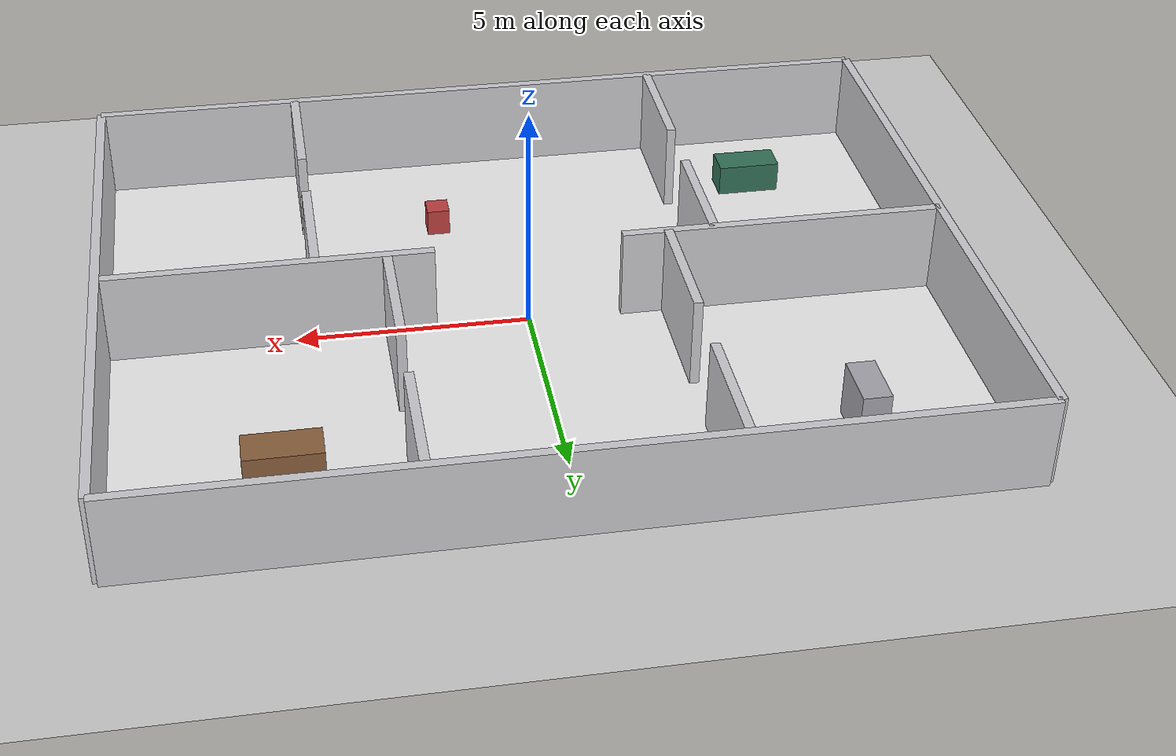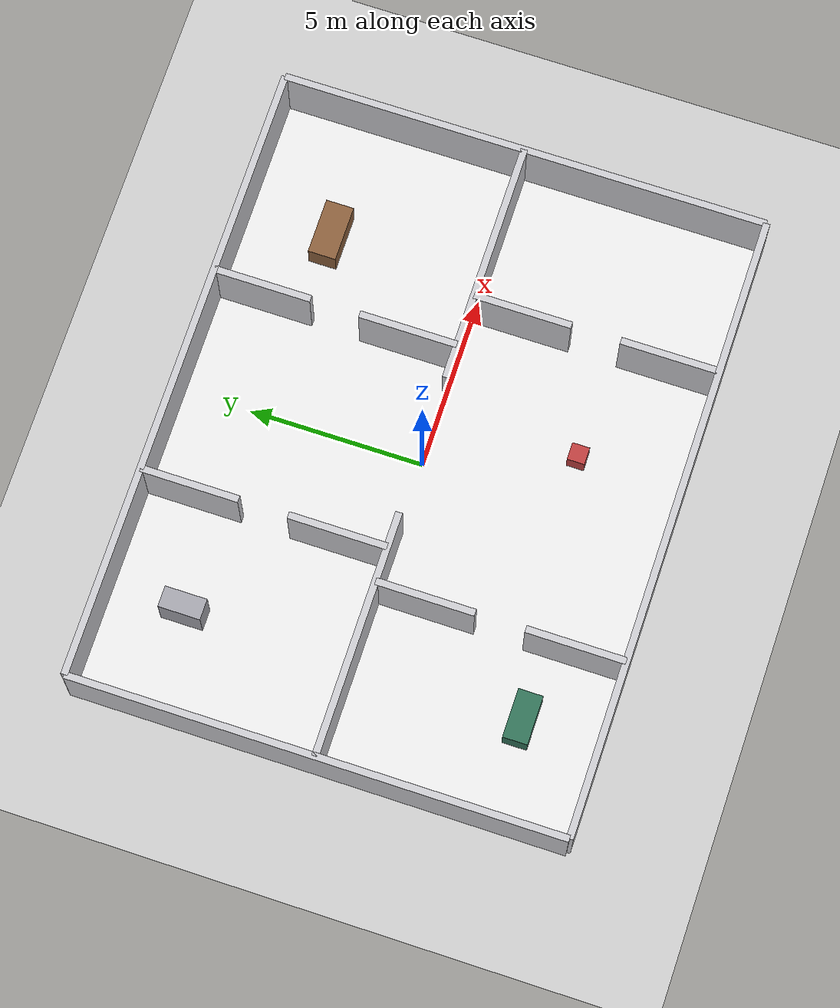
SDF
<?xml version="1.0" ?>
<sdf version="1.7">
  <world name="indoor_rooms">
    <include>
      <uri>model://ground_plane</uri>
    </include>
    <include>
      <uri>model://sun</uri>
    </include>

    <gravity>0 0 -9.8</gravity>
    <magnetic_field>6e-06 2.3e-05 -4.2e-05</magnetic_field>
    <physics type="ode">
      <real_time_update_rate>1000.0</real_time_update_rate>
      <max_step_size>0.001</max_step_size>
      <real_time_factor>1.0</real_time_factor>
    </physics>

    <scene>
      <ambient>0.4 0.4 0.4 1</ambient>
      <background>0.95 0.95 0.95 1</background>
      <shadows>true</shadows>
    </scene>

    <gui fullscreen="0">
      <camera name="user_camera">
        <pose>0 -16 11 0 0.55 1.57</pose>
      </camera>
    </gui>

    <model name="floor">
      <static>true</static>
      <link name="link">
        <collision name="collision">
          <geometry>
            <box>
              <size>18 14 0.05</size>
            </box>
          </geometry>
          <pose>0 0 -0.025 0 0 0</pose>
        </collision>
        <visual name="visual">
          <geometry>
            <box>
              <size>18 14 0.05</size>
            </box>
          </geometry>
          <pose>0 0 -0.025 0 0 0</pose>
          <material>
            <ambient>0.93 0.93 0.93 1</ambient>
            <diffuse>0.93 0.93 0.93 1</diffuse>
          </material>
        </visual>
      </link>
    </model>

    <model name="walls">
      <static>true</static>
      <link name="link">
        <collision name="north_wall_col">
          <pose>0 7 1 0 0 0</pose>
          <geometry><box><size>18 0.2 2.0</size></box></geometry>
        </collision>
        <visual name="north_wall_vis">
          <pose>0 7 1 0 0 0</pose>
          <geometry><box><size>18 0.2 2.0</size></box></geometry>
          <material><ambient>0.8 0.8 0.82 1</ambient><diffuse>0.8 0.8 0.82 1</diffuse></material>
        </visual>

        <collision name="south_wall_col">
          <pose>0 -7 1 0 0 0</pose>
          <geometry><box><size>18 0.2 2.0</size></box></geometry>
        </collision>
        <visual name="south_wall_vis">
          <pose>0 -7 1 0 0 0</pose>
          <geometry><box><size>18 0.2 2.0</size></box></geometry>
          <material><ambient>0.8 0.8 0.82 1</ambient><diffuse>0.8 0.8 0.82 1</diffuse></material>
        </visual>

        <collision name="west_wall_col">
          <pose>-9 0 1 0 0 0</pose>
          <geometry><box><size>0.2 14 2.0</size></box></geometry>
        </collision>
        <visual name="west_wall_vis">
          <pose>-9 0 1 0 0 0</pose>
          <geometry><box><size>0.2 14 2.0</size></box></geometry>
          <material><ambient>0.8 0.8 0.82 1</ambient><diffuse>0.8 0.8 0.82 1</diffuse></material>
        </visual>

        <collision name="east_wall_col">
          <pose>9 0 1 0 0 0</pose>
          <geometry><box><size>0.2 14 2.0</size></box></geometry>
        </collision>
        <visual name="east_wall_vis">
          <pose>9 0 1 0 0 0</pose>
          <geometry><box><size>0.2 14 2.0</size></box></geometry>
          <material><ambient>0.8 0.8 0.82 1</ambient><diffuse>0.8 0.8 0.82 1</diffuse></material>
        </visual>

        <collision name="mid_horizontal_col_left">
          <pose>-5.5 0 1 0 0 0</pose>
          <geometry><box><size>7 0.2 2.0</size></box></geometry>
        </collision>
        <visual name="mid_horizontal_vis_left">
          <pose>-5.5 0 1 0 0 0</pose>
          <geometry><box><size>7 0.2 2.0</size></box></geometry>
          <material><ambient>0.8 0.8 0.82 1</ambient><diffuse>0.8 0.8 0.82 1</diffuse></material>
        </visual>

        <collision name="mid_horizontal_col_right">
          <pose>5.5 0 1 0 0 0</pose>
          <geometry><box><size>7 0.2 2.0</size></box></geometry>
        </collision>
        <visual name="mid_horizontal_vis_right">
          <pose>5.5 0 1 0 0 0</pose>
          <geometry><box><size>7 0.2 2.0</size></box></geometry>
          <material><ambient>0.8 0.8 0.82 1</ambient><diffuse>0.8 0.8 0.82 1</diffuse></material>
        </visual>

        <collision name="north_left_vertical_col_top">
          <pose>-3 5.6 1 0 0 0</pose>
          <geometry><box><size>0.2 2.8 2.0</size></box></geometry>
        </collision>
        <visual name="north_left_vertical_vis_top">
          <pose>-3 5.6 1 0 0 0</pose>
          <geometry><box><size>0.2 2.8 2.0</size></box></geometry>
          <material><ambient>0.8 0.8 0.82 1</ambient><diffuse>0.8 0.8 0.82 1</diffuse></material>
        </visual>

        <collision name="north_left_vertical_col_bottom">
          <pose>-3 1.4 1 0 0 0</pose>
          <geometry><box><size>0.2 2.8 2.0</size></box></geometry>
        </collision>
        <visual name="north_left_vertical_vis_bottom">
          <pose>-3 1.4 1 0 0 0</pose>
          <geometry><box><size>0.2 2.8 2.0</size></box></geometry>
          <material><ambient>0.8 0.8 0.82 1</ambient><diffuse>0.8 0.8 0.82 1</diffuse></material>
        </visual>

        <collision name="north_right_vertical_col_top">
          <pose>3 5.6 1 0 0 0</pose>
          <geometry><box><size>0.2 2.8 2.0</size></box></geometry>
        </collision>
        <visual name="north_right_vertical_vis_top">
          <pose>3 5.6 1 0 0 0</pose>
          <geometry><box><size>0.2 2.8 2.0</size></box></geometry>
          <material><ambient>0.8 0.8 0.82 1</ambient><diffuse>0.8 0.8 0.82 1</diffuse></material>
        </visual>

        <collision name="north_right_vertical_col_bottom">
          <pose>3 1.4 1 0 0 0</pose>
          <geometry><box><size>0.2 2.8 2.0</size></box></geometry>
        </collision>
        <visual name="north_right_vertical_vis_bottom">
          <pose>3 1.4 1 0 0 0</pose>
          <geometry><box><size>0.2 2.8 2.0</size></box></geometry>
          <material><ambient>0.8 0.8 0.82 1</ambient><diffuse>0.8 0.8 0.82 1</diffuse></material>
        </visual>

        <collision name="south_left_vertical_col_top">
          <pose>-4 -1.4 1 0 0 0</pose>
          <geometry><box><size>0.2 2.8 2.0</size></box></geometry>
        </collision>
        <visual name="south_left_vertical_vis_top">
          <pose>-4 -1.4 1 0 0 0</pose>
          <geometry><box><size>0.2 2.8 2.0</size></box></geometry>
          <material><ambient>0.8 0.8 0.82 1</ambient><diffuse>0.8 0.8 0.82 1</diffuse></material>
        </visual>

        <collision name="south_left_vertical_col_bottom">
          <pose>-4 -5.6 1 0 0 0</pose>
          <geometry><box><size>0.2 2.8 2.0</size></box></geometry>
        </collision>
        <visual name="south_left_vertical_vis_bottom">
          <pose>-4 -5.6 1 0 0 0</pose>
          <geometry><box><size>0.2 2.8 2.0</size></box></geometry>
          <material><ambient>0.8 0.8 0.82 1</ambient><diffuse>0.8 0.8 0.82 1</diffuse></material>
        </visual>

        <collision name="south_right_vertical_col_top">
          <pose>4.5 -1.4 1 0 0 0</pose>
          <geometry><box><size>0.2 2.8 2.0</size></box></geometry>
        </collision>
        <visual name="south_right_vertical_vis_top">
          <pose>4.5 -1.4 1 0 0 0</pose>
          <geometry><box><size>0.2 2.8 2.0</size></box></geometry>
          <material><ambient>0.8 0.8 0.82 1</ambient><diffuse>0.8 0.8 0.82 1</diffuse></material>
        </visual>

        <collision name="south_right_vertical_col_bottom">
          <pose>4.5 -5.6 1 0 0 0</pose>
          <geometry><box><size>0.2 2.8 2.0</size></box></geometry>
        </collision>
        <visual name="south_right_vertical_vis_bottom">
          <pose>4.5 -5.6 1 0 0 0</pose>
          <geometry><box><size>0.2 2.8 2.0</size></box></geometry>
          <material><ambient>0.8 0.8 0.82 1</ambient><diffuse>0.8 0.8 0.82 1</diffuse></material>
        </visual>
      </link>
    </model>

    <model name="table">
      <static>true</static>
      <pose>5.5 4.5 0 0 0 0</pose>
      <link name="link">
        <collision name="collision">
          <pose>0 0 0.4 0 0 0</pose>
          <geometry><box><size>1.6 0.8 0.8</size></box></geometry>
        </collision>
        <visual name="visual">
          <pose>0 0 0.4 0 0 0</pose>
          <geometry><box><size>1.6 0.8 0.8</size></box></geometry>
          <material><ambient>0.55 0.38 0.24 1</ambient><diffuse>0.55 0.38 0.24 1</diffuse></material>
        </visual>
      </link>
    </model>

    <model name="cabinet">
      <static>true</static>
      <pose>-6 4.8 0 0 0 0</pose>
      <link name="link">
        <collision name="collision">
          <pose>0 0 0.6 0 0 0</pose>
          <geometry><box><size>0.6 1.2 1.2</size></box></geometry>
        </collision>
        <visual name="visual">
          <pose>0 0 0.6 0 0 0</pose>
          <geometry><box><size>0.6 1.2 1.2</size></box></geometry>
          <material><ambient>0.65 0.65 0.68 1</ambient><diffuse>0.65 0.65 0.68 1</diffuse></material>
        </visual>
      </link>
    </model>

    <model name="sofa">
      <static>true</static>
      <pose>-6 -4.8 0 0 0 0</pose>
      <link name="link">
        <collision name="collision">
          <pose>0 0 0.35 0 0 0</pose>
          <geometry><box><size>1.4 0.7 0.7</size></box></geometry>
        </collision>
        <visual name="visual">
          <pose>0 0 0.35 0 0 0</pose>
          <geometry><box><size>1.4 0.7 0.7</size></box></geometry>
          <material><ambient>0.2 0.45 0.35 1</ambient><diffuse>0.2 0.45 0.35 1</diffuse></material>
        </visual>
      </link>
    </model>

    <model name="box_obstacle">
      <static>false</static>
      <pose>1.5 -4.0 0.3 0 0 0</pose>
      <link name="link">
        <inertial>
          <mass>2.0</mass>
          <inertia>
            <ixx>0.1</ixx>
            <ixy>0</ixy>
            <ixz>0</ixz>
            <iyy>0.1</iyy>
            <iyz>0</iyz>
            <izz>0.1</izz>
          </inertia>
        </inertial>
        <collision name="collision">
          <geometry><box><size>0.5 0.5 0.6</size></box></geometry>
        </collision>
        <visual name="visual">
          <geometry><box><size>0.5 0.5 0.6</size></box></geometry>
          <material><ambient>0.75 0.25 0.25 1</ambient><diffuse>0.75 0.25 0.25 1</diffuse></material>
        </visual>
      </link>
    </model>
  </world>
</sdf>
